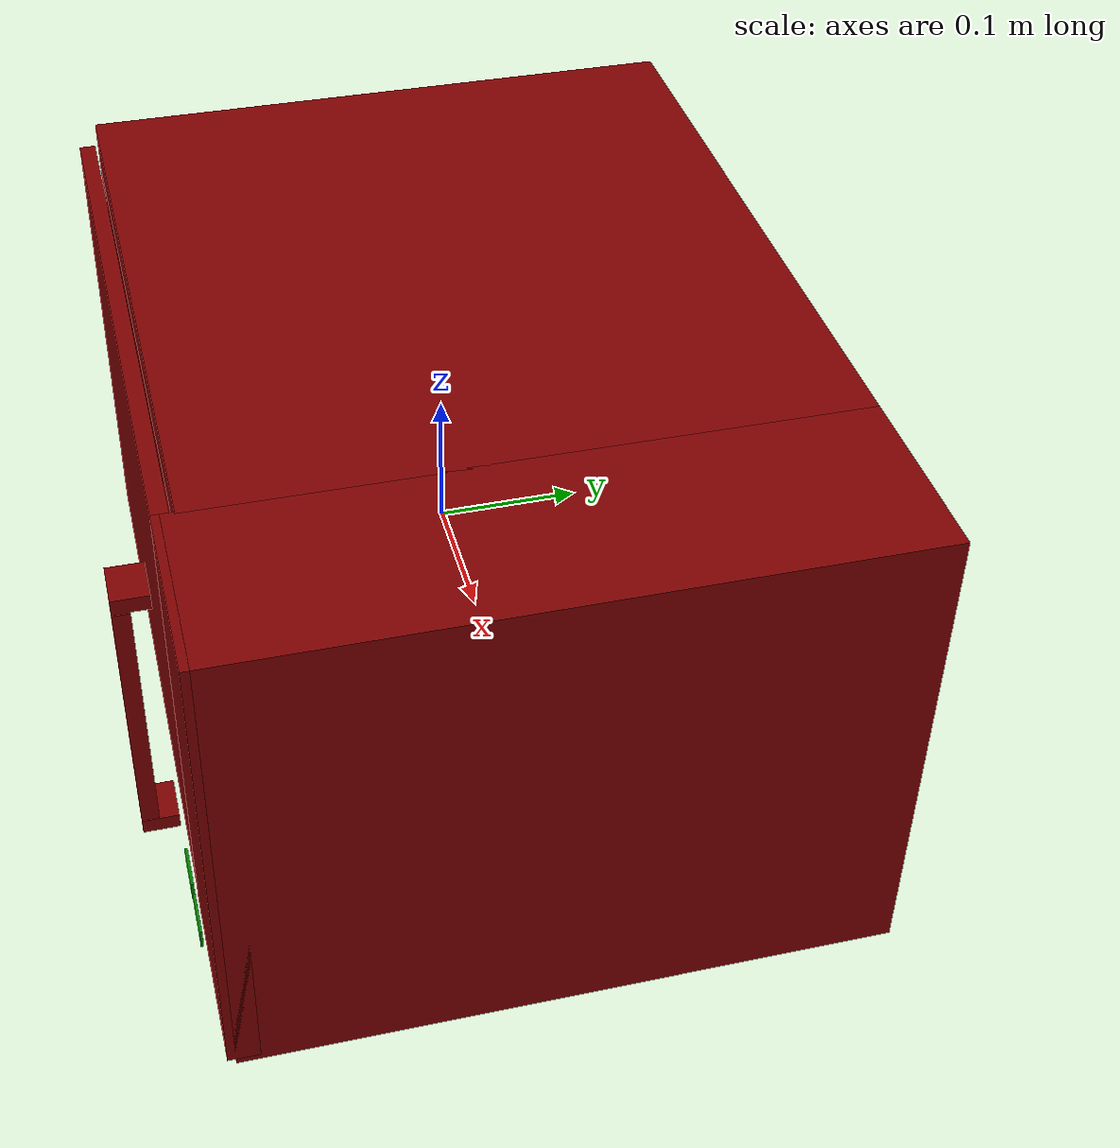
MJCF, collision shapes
<?xml version='1.0' encoding='UTF-8'?>
<mujoco model="model">
  <option timestep="0.002" gravity="0.0 0.0 -9.81"/>
  <compiler angle="radian"/>
  <asset>
    <mesh file="visuals/door.obj" name="door_vis"/>
    <mesh file="visuals/door_Clear.obj" name="door_Clear_vis"/>
    <mesh file="visuals/Body001.obj" name="Body001_vis"/>
    <mesh file="visuals/Disc001.obj" name="Disc001_vis"/>
    <texture file="visuals/T_BC001.png" name="Body001_material" type="2d"/>
    <material name="Body001_material" rgba="1 1 1 1.0" texture="Body001_material" shininess="0.141421377658844" specular="2"/>
    <texture file="visuals/T_BC001.png" name="door_material" type="2d"/>
    <material name="door_material" rgba="1 1 1 1.0" texture="door_material" shininess="0.141421377658844" specular="2"/>
    <texture file="visuals/T_BC001.png" name="door_Clear_material" type="2d"/>
    <material name="door_Clear_material" rgba="1 1 1 0.800000011920929" texture="door_Clear_material" shininess="0.141421377658844" specular="0.3103448502657381"/>
    <texture file="visuals/T_BC001.png" name="Disc001_material" type="2d"/>
    <material name="Disc001_material" rgba="1 1 1 1.0" texture="Disc001_material" shininess="0.141421377658844" specular="2"/>
  </asset>
  <default>
    <default class="visual">
      <geom conaffinity="0" contype="0" group="1" type="mesh"/>
    </default>
    <default class="collision">
      <geom group="0" rgba="0.5 0 0 0.5"/>
    </default>
    <default class="spawn">
      <geom group="0" rgba="1 1 1 0.5" contype="0" conaffinity="0"/>
      <site group="0" rgba="1 1 1 0.5"/>
    </default>
    <default class="region">
      <geom group="1" conaffinity="0" contype="0" rgba="0 1 0 0"/>
    </default>
  </default>
  <worldbody>
    <body>
      <body name="object">
        <geom class="collision" type="cylinder" pos="-0.07194036 -0.03374590 -0.14002886" size="0.15807774662971497 0.002365765394642949" quat="7.549790126404332e-08 0.0 0.0 1.0" name="tray" rgba="0 1 0 0.5"/>
        <geom class="collision" type="box" pos="0.25890565 -0.22350907 -0.09119558" size="0.01590709015727043 0.0009480941807851195 0.007239048834890127" quat="1.0 0.0 0.0 0.0" name="start_button" rgba="0.0 0.5 0 0.5"/>
        <geom class="collision" type="box" pos="0.21825954 -0.22350907 -0.09140095" size="0.015789594501256943 0.001085944939404726 0.007118518929928541" quat="1.0 0.0 0.0 0.0" name="stop_button" rgba="0.0 0.5 0 0.5"/>
        <geom mesh="Body001_vis" type="mesh" solimp="0.998 0.998 0.001" solref="0.001 1" friction="0.95 0.3 0.1" class="visual" material="Body001_material"/>
        <geom class="collision" type="box" pos="-0.06853416 0.02224590 0.16059242" size="0.2429242730140686 0.22560447454452515 0.019580403342843056" quat="1.0 0.0 0.0 0.0"/>
        <geom class="collision" type="box" pos="-0.29198316 0.02224590 -0.01994479" size="0.01947524957358837 0.22560447454452515 0.15896162390708923" quat="1.0 0.0 0.0 0.0"/>
        <geom class="collision" type="box" pos="-0.04750563 0.19608669 -0.01994479" size="0.22367341816425323 0.05176366865634918 0.15896162390708923" quat="1.0 0.0 0.0 0.0"/>
        <geom class="collision" type="box" pos="0.24162410 0.01763812 0.00063319" size="0.06898146122694016 0.2302122563123703 0.17953963577747345" quat="1.0 0.0 0.0 0.0"/>
        <geom class="collision" type="box" pos="-0.06853416 0.02224590 -0.16455179" size="0.2429242730140686 0.22560447454452515 0.014557680115103722" quat="1.0 0.0 0.0 0.0"/>
        <geom class="collision" type="box" pos="0.24162410 -0.20714194 0.00280756" size="0.06898146122694016 0.01121463067829609 0.17728735506534576" quat="1.0 0.0 0.0 0.0"/>
        <geom class="collision" type="box" pos="0.13886644 0.02224590 -0.01994479" size="0.020217396318912506 0.22560447454452515 0.15896162390708923" quat="1.0 0.0 0.0 0.0"/>
        <body name="door">
          <joint axis="0.0 0.0 1.0" pos="-0.30080429 -0.21070002 -0.00449087" limited="true" name="microjoint" range="-1.5707963267948966 0.0" type="hinge" damping="1" frictionloss="1" armature=".01" stiffness="0.05"/>
          <geom mesh="door_vis" type="mesh" solimp="0.998 0.998 0.001" solref="0.001 1" friction="0.95 0.3 0.1" class="visual" material="door_material"/>
          <geom class="collision" type="box" pos="-0.07484244 -0.21355847 -0.00676872" size="0.17183631658554077 0.0023258894216269255 0.13130086660385132" quat="1.0 0.0 0.0 0.0"/>
          <geom class="collision" type="box" pos="-0.06121752 -0.21208137 0.00112929" size="0.23052479326725006 0.0059012179262936115 0.17177961766719818" quat="1.0 0.0 0.0 0.0" name="door_main"/>
          <geom class="collision" type="box" pos="0.13445795 -0.23619199 0.09234348" size="0.01661655493080616 0.012983037158846855 0.005686471704393625" quat="1.0 0.0 0.0 0.0"/>
          <geom class="collision" type="box" pos="0.13445795 -0.24301834 -0.01000838" size="0.01661655493080616 0.006156721152365208 0.09547507762908936" quat="1.0 0.0 0.0 0.0" name="door_handle_main"/>
          <geom class="collision" type="box" pos="0.13445795 -0.23619199 -0.11242406" size="0.01661655493080616 0.012983055785298347 0.005686475895345211" quat="1.0 0.0 0.0 0.0"/>
          <body name="door_Clear">
            <geom mesh="door_Clear_vis" type="mesh" solimp="0.998 0.998 0.001" solref="0.001 1" friction="0.95 0.3 0.1" class="visual" material="door_Clear_material"/>
            <geom class="collision" type="box" pos="-0.07484244 -0.21355847 -0.00676872" size="0.17183631658554077 0.0023258894216269255 0.13130086660385132" quat="1.0 0.0 0.0 0.0"/>
          </body>
        </body>
        <body name="Disc001">
          <joint axis="0.0 0.0 -1.0" pos="-0.07194036 -0.03374590 -0.14983913" limited="false" name="Disc001_joint" range="0 360" type="hinge" damping="1" frictionloss="1" armature=".01" stiffness="0.05"/>
          <geom mesh="Disc001_vis" type="mesh" solimp="0.998 0.998 0.001" solref="0.001 1" friction="0.95 0.3 0.1" class="visual" material="Disc001_material"/>
          <geom class="collision" type="cylinder" pos="-0.07194036 -0.03374590 -0.14595465" size="0.15807774662971497 0.0023305988870561123" quat="7.549790126404332e-08 0.0 0.0 1.0"/>
        </body>
        <geom class="region" name="reg_int" type="box" pos="-0.076591895 -0.030354019999999995 -0.0008598749999999961" size="0.191129085 0.1705569 0.137803165"/>
        <geom class="region" name="reg_main" type="box" pos="0.0 0.014177560000000006 9.999999994736442e-09" size="0.31307579 0.23595293 0.18160151"/>
      <geom class="region" name="reg_tray" type="cylinder" pos="-0.07194036 -0.0337459 -0.0003599023026785303" size="0.15807774662971497 0.1363031923026785"/></body>
    </body>
  </worldbody>
  <actuator>
    <motor name="microjoint_actuator" joint="microjoint" gear="10"/>
    <motor name="Disc001_joint_actuator" joint="Disc001_joint" gear="10"/>
  </actuator>
</mujoco>
